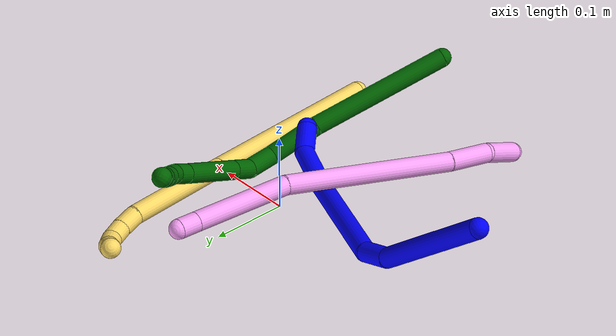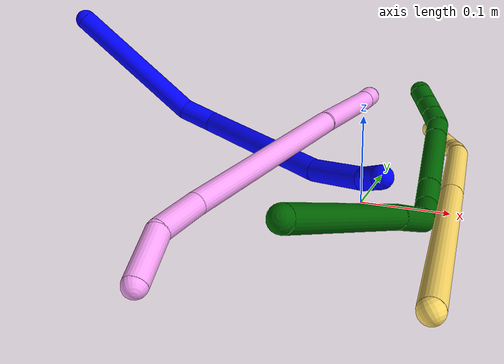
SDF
<sdf version="1.7">
 <world name="default">
  <model name="photoneo_s_sensor">
   <static>1</static>
   <pose>0 0 2 1.57079 1.57079 3.14159</pose>
   <link name="link">
    <inertial><mass>0.1</mass></inertial>
    <sensor name="sensor" type="depth">
     <update_rate>30</update_rate>
     <camera>
      <horizontal_fov>1.22</horizontal_fov>
      <image><width>1920</width><height>1200</height><format>B8G8R8</format></image>
      <clip><near>0.1</near><far>4</far></clip>
      <depth_camera><output>points</output></depth_camera>
     </camera>
     <plugin name="camera_plugin" filename="libgazebo_ros_depth_camera.so">
      <baseline>0.2</baseline>
      <alwaysOn>1</alwaysOn>
      <updateRate>0.0</updateRate>
      <cameraName>camera_ir</cameraName>
      <imageTopicName>/camera/color/image_raw</imageTopicName>
      <cameraInfoTopicName>/camera/color/camera_info</cameraInfoTopicName>
      <depthImageTopicName>/camera/depth/image_raw</depthImageTopicName>
      <depthImageCameraInfoTopicName>/camera/depth/camera_info</depthImageCameraInfoTopicName>
      <pointCloudTopicName>/camera/depth/points</pointCloudTopicName>
      <frameName>fr_optical</frameName>
      <pointCloudCutoff>0.1</pointCloudCutoff>
      <pointCloudCutoffMax>2.0</pointCloudCutoffMax>
      <distortionK1>0</distortionK1>
      <distortionK2>0</distortionK2>
      <distortionK3>0</distortionK3>
      <distortionT1>0</distortionT1>
      <distortionT2>0</distortionT2>
      <CxPrime>0</CxPrime>
      <Cx>0</Cx>
      <Cy>0</Cy>
      <focalLength>0</focalLength>
      <hackBaseline>0</hackBaseline>
     </plugin>
    </sensor>
   </link>
  </model>
  <model name="bin">
   <static>1</static>
   <link name="bottom">
    <collision name="collision-bottom">
     <pose>0 0 -0.01 0 -0 0</pose>
     <geometry><box><size>0.8 0.6 0.02</size></box></geometry>
     <surface>
      <friction><ode><mu>100</mu><mu2>100</mu2></ode></friction>
      <contact><collide_bitmask>65535</collide_bitmask></contact>
     </surface>
    </collision>
   </link>
   <link name="west_wall">
    <collision name="collision-west_wall">
     <pose>-0.41 0 0.1 0 -0 0</pose>
     <geometry><box><size>0.02 0.6 0.2</size></box></geometry>
     <surface>
      <friction><ode><mu>100</mu><mu2>100</mu2></ode></friction>
      <contact><collide_bitmask>65535</collide_bitmask></contact>
     </surface>
    </collision>
   </link>
   <link name="east_wall">
    <collision name="collision-east_wall">
     <pose>0.41 0 0.1 0 -0 0</pose>
     <geometry><box><size>0.02 0.6 0.2</size></box></geometry>
     <surface>
      <friction><ode><mu>100</mu><mu2>100</mu2></ode></friction>
      <contact><collide_bitmask>65535</collide_bitmask></contact>
     </surface>
    </collision>
   </link>
   <link name="south_wall">
    <collision name="collision-south_wall">
     <pose>0 -0.31 0.1 0 -0 0</pose>
     <geometry><box><size>0.8 0.02 0.2</size></box></geometry>
     <surface>
      <friction><ode><mu>100</mu><mu2>100</mu2></ode></friction>
      <contact><collide_bitmask>65535</collide_bitmask></contact>
     </surface>
    </collision>
   </link>
   <link name="north_wall">
    <collision name="collision-north_wall">
     <pose>0 0.31 0.1 0 -0 0</pose>
     <geometry><box><size>0.8 0.02 0.2</size></box></geometry>
     <surface>
      <friction><ode><mu>100</mu><mu2>100</mu2></ode></friction>
      <contact><collide_bitmask>65535</collide_bitmask></contact>
     </surface>
    </collision>
   </link>
  </model>
  <model name="1">
   <static>0</static>
   <link name="1">
    <collision name="collision-cylinder-e_1_1_4">
     <pose>0.048441 -0.048336 -0.053985 2.41134 0.58927 1.34198</pose>
     <geometry><cylinder><radius>0.0125</radius><length>0.174324</length></cylinder></geometry>
     <surface>
      <friction><ode><mu>1.16</mu><mu2>1.16</mu2><slip1>0</slip1><slip2>0</slip2></ode></friction>
      <contact><ode><kp>1e+06</kp><kd>1</kd><max_vel>0</max_vel><min_depth>0.001</min_depth></ode></contact>
     </surface>
    </collision>
    <visual name="visual-cylinder-e_1_1_4">
     <pose>0.048441 -0.048336 -0.053985 2.41134 0.58927 1.34198</pose>
     <geometry><cylinder><radius>0.0125</radius><length>0.174324</length></cylinder></geometry>
     <material><ambient>0 0 1 1</ambient></material>
    </visual>
    <collision name="collision-cylinder-e_2_4_5">
     <pose>0.102335 -0.106719 -0.125175 2.61306 0.267165 0.921881</pose>
     <geometry><cylinder><radius>0.0125</radius><length>0.041315</length></cylinder></geometry>
     <surface>
      <friction><ode><mu>1.16</mu><mu2>1.16</mu2><slip1>0</slip1><slip2>0</slip2></ode></friction>
      <contact><ode><kp>1e+06</kp><kd>1</kd><max_vel>0</max_vel><min_depth>0.001</min_depth></ode></contact>
     </surface>
    </collision>
    <visual name="visual-cylinder-e_2_4_5">
     <pose>0.102335 -0.106719 -0.125175 2.61306 0.267165 0.921881</pose>
     <geometry><cylinder><radius>0.0125</radius><length>0.041315</length></cylinder></geometry>
     <material><ambient>0 0 1 1</ambient></material>
    </visual>
    <collision name="collision-cylinder-e_3_5_6">
     <pose>0.122094 -0.12617 -0.229341 3.03388 0.162125 1.96986</pose>
     <geometry><cylinder><radius>0.0125</radius><length>0.177257</length></cylinder></geometry>
     <surface>
      <friction><ode><mu>1.16</mu><mu2>1.16</mu2><slip1>0</slip1><slip2>0</slip2></ode></friction>
      <contact><ode><kp>1e+06</kp><kd>1</kd><max_vel>0</max_vel><min_depth>0.001</min_depth></ode></contact>
     </surface>
    </collision>
    <visual name="visual-cylinder-e_3_5_6">
     <pose>0.122094 -0.12617 -0.229341 3.03388 0.162125 1.96986</pose>
     <geometry><cylinder><radius>0.0125</radius><length>0.177257</length></cylinder></geometry>
     <material><ambient>0 0 1 1</ambient></material>
    </visual>
    <collision name="collision-cylinder-e_4_6_7">
     <pose>0.134451 -0.138268 -0.35035 3.06263 -0.05701 -1.25044</pose>
     <geometry><cylinder><radius>0.0125</radius><length>0.068424</length></cylinder></geometry>
     <surface>
      <friction><ode><mu>1.16</mu><mu2>1.16</mu2><slip1>0</slip1><slip2>0</slip2></ode></friction>
      <contact><ode><kp>1e+06</kp><kd>1</kd><max_vel>0</max_vel><min_depth>0.001</min_depth></ode></contact>
     </surface>
    </collision>
    <visual name="visual-cylinder-e_4_6_7">
     <pose>0.134451 -0.138268 -0.35035 3.06263 -0.05701 -1.25044</pose>
     <geometry><cylinder><radius>0.0125</radius><length>0.068424</length></cylinder></geometry>
     <material><ambient>0 0 1 1</ambient></material>
    </visual>
    <collision name="collision-cylinder-e_5_7_2">
     <pose>0.128191 -0.1343 -0.402037 -2.78041 -0.224788 1.10738</pose>
     <geometry><cylinder><radius>0.0125</radius><length>0.03868</length></cylinder></geometry>
     <surface>
      <friction><ode><mu>1.16</mu><mu2>1.16</mu2><slip1>0</slip1><slip2>0</slip2></ode></friction>
      <contact><ode><kp>1e+06</kp><kd>1</kd><max_vel>0</max_vel><min_depth>0.001</min_depth></ode></contact>
     </surface>
    </collision>
    <visual name="visual-cylinder-e_5_7_2">
     <pose>0.128191 -0.1343 -0.402037 -2.78041 -0.224788 1.10738</pose>
     <geometry><cylinder><radius>0.0125</radius><length>0.03868</length></cylinder></geometry>
     <material><ambient>0 0 1 1</ambient></material>
    </visual>
    <collision name="collision-sphere-2">
     <pose>0.12388 -0.127637 -0.419674 0 -0 0</pose>
     <geometry><sphere><radius>0.0125</radius></sphere></geometry>
     <surface>
      <friction><ode><mu>1.16</mu><mu2>1.16</mu2><slip1>0</slip1><slip2>0</slip2></ode></friction>
      <contact><ode><kp>1e+06</kp><kd>1</kd><max_vel>0</max_vel><min_depth>0.001</min_depth></ode></contact>
     </surface>
    </collision>
    <visual name="visual-sphere-2">
     <pose>0.12388 -0.127637 -0.419674 0 -0 0</pose>
     <geometry><sphere><radius>0.0125</radius></sphere></geometry>
     <material><ambient>0 0 1 1</ambient></material>
    </visual>
    <collision name="collision-sphere-7">
     <pose>0.132502 -0.140962 -0.3844 0 -0 0</pose>
     <geometry><sphere><radius>0.0125</radius></sphere></geometry>
     <surface>
      <friction><ode><mu>1.16</mu><mu2>1.16</mu2><slip1>0</slip1><slip2>0</slip2></ode></friction>
      <contact><ode><kp>1e+06</kp><kd>1</kd><max_vel>0</max_vel><min_depth>0.001</min_depth></ode></contact>
     </surface>
    </collision>
    <visual name="visual-sphere-7">
     <pose>0.132502 -0.140962 -0.3844 0 -0 0</pose>
     <geometry><sphere><radius>0.0125</radius></sphere></geometry>
     <material><ambient>0 0 1 1</ambient></material>
    </visual>
    <collision name="collision-sphere-6">
     <pose>0.1364 -0.135573 -0.3163 0 -0 0</pose>
     <geometry><sphere><radius>0.0125</radius></sphere></geometry>
     <surface>
      <friction><ode><mu>1.16</mu><mu2>1.16</mu2><slip1>0</slip1><slip2>0</slip2></ode></friction>
      <contact><ode><kp>1e+06</kp><kd>1</kd><max_vel>0</max_vel><min_depth>0.001</min_depth></ode></contact>
     </surface>
    </collision>
    <visual name="visual-sphere-6">
     <pose>0.1364 -0.135573 -0.3163 0 -0 0</pose>
     <geometry><sphere><radius>0.0125</radius></sphere></geometry>
     <material><ambient>0 0 1 1</ambient></material>
    </visual>
    <collision name="collision-sphere-5">
     <pose>0.107788 -0.116767 -0.142381 0 -0 0</pose>
     <geometry><sphere><radius>0.0125</radius></sphere></geometry>
     <surface>
      <friction><ode><mu>1.16</mu><mu2>1.16</mu2><slip1>0</slip1><slip2>0</slip2></ode></friction>
      <contact><ode><kp>1e+06</kp><kd>1</kd><max_vel>0</max_vel><min_depth>0.001</min_depth></ode></contact>
     </surface>
    </collision>
    <visual name="visual-sphere-5">
     <pose>0.107788 -0.116767 -0.142381 0 -0 0</pose>
     <geometry><sphere><radius>0.0125</radius></sphere></geometry>
     <material><ambient>0 0 1 1</ambient></material>
    </visual>
    <collision name="collision-sphere-1">
     <geometry><sphere><radius>0.0125</radius></sphere></geometry>
     <surface>
      <friction><ode><mu>1.16</mu><mu2>1.16</mu2><slip1>0</slip1><slip2>0</slip2></ode></friction>
      <contact><ode><kp>1e+06</kp><kd>1</kd><max_vel>0</max_vel><min_depth>0.001</min_depth></ode></contact>
     </surface>
    </collision>
    <visual name="visual-sphere-1">
     <geometry><sphere><radius>0.0125</radius></sphere></geometry>
     <material><ambient>0 0 1 1</ambient></material>
    </visual>
    <collision name="collision-sphere-4">
     <pose>0.096881 -0.096672 -0.107969 0 -0 0</pose>
     <geometry><sphere><radius>0.0125</radius></sphere></geometry>
     <surface>
      <friction><ode><mu>1.16</mu><mu2>1.16</mu2><slip1>0</slip1><slip2>0</slip2></ode></friction>
      <contact><ode><kp>1e+06</kp><kd>1</kd><max_vel>0</max_vel><min_depth>0.001</min_depth></ode></contact>
     </surface>
    </collision>
    <visual name="visual-sphere-4">
     <pose>0.096881 -0.096672 -0.107969 0 -0 0</pose>
     <geometry><sphere><radius>0.0125</radius></sphere></geometry>
     <material><ambient>0 0 1 1</ambient></material>
    </visual>
    <inertial>
     <pose>0.096945 -0.099711 -0.189516 0 -0 0</pose>
     <mass>0.5</mass>
     <inertia>
      <ixx>0.000705</ixx>
      <ixy>0</ixy>
      <ixz>0</ixz>
      <iyy>0.001026</iyy>
      <iyz>0</iyz>
      <izz>-5.4e-05</izz>
     </inertia>
    </inertial>
   </link>
   <pose>-0.380921 0.040521 0.184033 1.84651 1.34092 -1.80694</pose>
  </model>
  <model name="4">
   <static>0</static>
   <link name="4">
    <collision name="collision-cylinder-e_1_1_4">
     <pose>0.005569 0.006419 0.028941 -0.218258 0.185705 -0.020405</pose>
     <geometry><cylinder><radius>0.0125</radius><length>0.060326</length></cylinder></geometry>
     <surface>
      <friction><ode><mu>1.16</mu><mu2>1.16</mu2><slip1>0</slip1><slip2>0</slip2></ode></friction>
      <contact><ode><kp>1e+06</kp><kd>1</kd><max_vel>0</max_vel><min_depth>0.001</min_depth></ode></contact>
     </surface>
    </collision>
    <visual name="visual-cylinder-e_1_1_4">
     <pose>0.005569 0.006419 0.028941 -0.218258 0.185705 -0.020405</pose>
     <geometry><cylinder><radius>0.0125</radius><length>0.060326</length></cylinder></geometry>
     <material><ambient>1 0.65098 0.996078 1</ambient></material>
    </visual>
    <collision name="collision-cylinder-e_2_4_5">
     <pose>0.010929 0.029174 0.081365 -0.607814 -0.007329 0.002299</pose>
     <geometry><cylinder><radius>0.0125</radius><length>0.057214</length></cylinder></geometry>
     <surface>
      <friction><ode><mu>1.16</mu><mu2>1.16</mu2><slip1>0</slip1><slip2>0</slip2></ode></friction>
      <contact><ode><kp>1e+06</kp><kd>1</kd><max_vel>0</max_vel><min_depth>0.001</min_depth></ode></contact>
     </surface>
    </collision>
    <visual name="visual-cylinder-e_2_4_5">
     <pose>0.010929 0.029174 0.081365 -0.607814 -0.007329 0.002299</pose>
     <geometry><cylinder><radius>0.0125</radius><length>0.057214</length></cylinder></geometry>
     <material><ambient>1 0.65098 0.996078 1</ambient></material>
    </visual>
    <collision name="collision-cylinder-e_3_5_6">
     <pose>0.017218 0.118513 0.192195 -0.696177 0.057023 -0.020696</pose>
     <geometry><cylinder><radius>0.0125</radius><length>0.228046</length></cylinder></geometry>
     <surface>
      <friction><ode><mu>1.16</mu><mu2>1.16</mu2><slip1>0</slip1><slip2>0</slip2></ode></friction>
      <contact><ode><kp>1e+06</kp><kd>1</kd><max_vel>0</max_vel><min_depth>0.001</min_depth></ode></contact>
     </surface>
    </collision>
    <visual name="visual-cylinder-e_3_5_6">
     <pose>0.017218 0.118513 0.192195 -0.696177 0.057023 -0.020696</pose>
     <geometry><cylinder><radius>0.0125</radius><length>0.228046</length></cylinder></geometry>
     <material><ambient>1 0.65098 0.996078 1</ambient></material>
    </visual>
    <collision name="collision-cylinder-e_4_6_7">
     <pose>0.014085 0.227735 0.33221 -0.602419 -0.149552 0.046538</pose>
     <geometry><cylinder><radius>0.0125</radius><length>0.12928</length></cylinder></geometry>
     <surface>
      <friction><ode><mu>1.16</mu><mu2>1.16</mu2><slip1>0</slip1><slip2>0</slip2></ode></friction>
      <contact><ode><kp>1e+06</kp><kd>1</kd><max_vel>0</max_vel><min_depth>0.001</min_depth></ode></contact>
     </surface>
    </collision>
    <visual name="visual-cylinder-e_4_6_7">
     <pose>0.014085 0.227735 0.33221 -0.602419 -0.149552 0.046538</pose>
     <geometry><cylinder><radius>0.0125</radius><length>0.12928</length></cylinder></geometry>
     <material><ambient>1 0.65098 0.996078 1</ambient></material>
    </visual>
    <collision name="collision-cylinder-e_5_7_2">
     <pose>0.002759 0.270447 0.395502 -0.548554 -0.135265 0.038113</pose>
     <geometry><cylinder><radius>0.0125</radius><length>0.025134</length></cylinder></geometry>
     <surface>
      <friction><ode><mu>1.16</mu><mu2>1.16</mu2><slip1>0</slip1><slip2>0</slip2></ode></friction>
      <contact><ode><kp>1e+06</kp><kd>1</kd><max_vel>0</max_vel><min_depth>0.001</min_depth></ode></contact>
     </surface>
    </collision>
    <visual name="visual-cylinder-e_5_7_2">
     <pose>0.002759 0.270447 0.395502 -0.548554 -0.135265 0.038113</pose>
     <geometry><cylinder><radius>0.0125</radius><length>0.025134</length></cylinder></geometry>
     <material><ambient>1 0.65098 0.996078 1</ambient></material>
    </visual>
    <collision name="collision-sphere-2">
     <pose>0.001065 0.27694 0.406127 0 -0 0</pose>
     <geometry><sphere><radius>0.0125</radius></sphere></geometry>
     <surface>
      <friction><ode><mu>1.16</mu><mu2>1.16</mu2><slip1>0</slip1><slip2>0</slip2></ode></friction>
      <contact><ode><kp>1e+06</kp><kd>1</kd><max_vel>0</max_vel><min_depth>0.001</min_depth></ode></contact>
     </surface>
    </collision>
    <visual name="visual-sphere-2">
     <pose>0.001065 0.27694 0.406127 0 -0 0</pose>
     <geometry><sphere><radius>0.0125</radius></sphere></geometry>
     <material><ambient>1 0.65098 0.996078 1</ambient></material>
    </visual>
    <collision name="collision-sphere-7">
     <pose>0.004454 0.263953 0.384877 0 -0 0</pose>
     <geometry><sphere><radius>0.0125</radius></sphere></geometry>
     <surface>
      <friction><ode><mu>1.16</mu><mu2>1.16</mu2><slip1>0</slip1><slip2>0</slip2></ode></friction>
      <contact><ode><kp>1e+06</kp><kd>1</kd><max_vel>0</max_vel><min_depth>0.001</min_depth></ode></contact>
     </surface>
    </collision>
    <visual name="visual-sphere-7">
     <pose>0.004454 0.263953 0.384877 0 -0 0</pose>
     <geometry><sphere><radius>0.0125</radius></sphere></geometry>
     <material><ambient>1 0.65098 0.996078 1</ambient></material>
    </visual>
    <collision name="collision-sphere-6">
     <pose>0.023716 0.191516 0.279543 0 -0 0</pose>
     <geometry><sphere><radius>0.0125</radius></sphere></geometry>
     <surface>
      <friction><ode><mu>1.16</mu><mu2>1.16</mu2><slip1>0</slip1><slip2>0</slip2></ode></friction>
      <contact><ode><kp>1e+06</kp><kd>1</kd><max_vel>0</max_vel><min_depth>0.001</min_depth></ode></contact>
     </surface>
    </collision>
    <visual name="visual-sphere-6">
     <pose>0.023716 0.191516 0.279543 0 -0 0</pose>
     <geometry><sphere><radius>0.0125</radius></sphere></geometry>
     <material><ambient>1 0.65098 0.996078 1</ambient></material>
    </visual>
    <collision name="collision-sphere-5">
     <pose>0.010719 0.04551 0.104848 0 -0 0</pose>
     <geometry><sphere><radius>0.0125</radius></sphere></geometry>
     <surface>
      <friction><ode><mu>1.16</mu><mu2>1.16</mu2><slip1>0</slip1><slip2>0</slip2></ode></friction>
      <contact><ode><kp>1e+06</kp><kd>1</kd><max_vel>0</max_vel><min_depth>0.001</min_depth></ode></contact>
     </surface>
    </collision>
    <visual name="visual-sphere-5">
     <pose>0.010719 0.04551 0.104848 0 -0 0</pose>
     <geometry><sphere><radius>0.0125</radius></sphere></geometry>
     <material><ambient>1 0.65098 0.996078 1</ambient></material>
    </visual>
    <collision name="collision-sphere-1">
     <geometry><sphere><radius>0.0125</radius></sphere></geometry>
     <surface>
      <friction><ode><mu>1.16</mu><mu2>1.16</mu2><slip1>0</slip1><slip2>0</slip2></ode></friction>
      <contact><ode><kp>1e+06</kp><kd>1</kd><max_vel>0</max_vel><min_depth>0.001</min_depth></ode></contact>
     </surface>
    </collision>
    <visual name="visual-sphere-1">
     <geometry><sphere><radius>0.0125</radius></sphere></geometry>
     <material><ambient>1 0.65098 0.996078 1</ambient></material>
    </visual>
    <collision name="collision-sphere-4">
     <pose>0.011139 0.012838 0.057882 0 -0 0</pose>
     <geometry><sphere><radius>0.0125</radius></sphere></geometry>
     <surface>
      <friction><ode><mu>1.16</mu><mu2>1.16</mu2><slip1>0</slip1><slip2>0</slip2></ode></friction>
      <contact><ode><kp>1e+06</kp><kd>1</kd><max_vel>0</max_vel><min_depth>0.001</min_depth></ode></contact>
     </surface>
    </collision>
    <visual name="visual-sphere-4">
     <pose>0.011139 0.012838 0.057882 0 -0 0</pose>
     <geometry><sphere><radius>0.0125</radius></sphere></geometry>
     <material><ambient>1 0.65098 0.996078 1</ambient></material>
    </visual>
    <inertial>
     <pose>0.013556 0.130644 0.206238 0 -0 0</pose>
     <mass>0.5</mass>
     <inertia>
      <ixx>0.001206</ixx>
      <ixy>0</ixy>
      <ixz>0</ixz>
      <iyy>0.000965</iyy>
      <iyz>0</iyz>
      <izz>-0.000759</izz>
     </inertia>
    </inertial>
   </link>
   <pose>-0.118704 -0.286961 0.012603 -0.65302 -1.13999 -0.4498</pose>
  </model>
  <model name="5">
   <static>0</static>
   <link name="5">
    <collision name="collision-cylinder-e_1_1_4">
     <pose>-0.008047 0.115718 -0.054569 -2.01144 -0.062818 0.099027</pose>
     <geometry><cylinder><radius>0.0125</radius><length>0.256384</length></cylinder></geometry>
     <surface>
      <friction><ode><mu>1.16</mu><mu2>1.16</mu2><slip1>0</slip1><slip2>0</slip2></ode></friction>
      <contact><ode><kp>1e+06</kp><kd>1</kd><max_vel>0</max_vel><min_depth>0.001</min_depth></ode></contact>
     </surface>
    </collision>
    <visual name="visual-cylinder-e_1_1_4">
     <pose>-0.008047 0.115718 -0.054569 -2.01144 -0.062818 0.099027</pose>
     <geometry><cylinder><radius>0.0125</radius><length>0.256384</length></cylinder></geometry>
     <material><ambient>1 0.858824 0.4 1</ambient></material>
    </visual>
    <collision name="collision-cylinder-e_2_4_5">
     <pose>-0.020072 0.298281 -0.140873 -2.01404 -0.053698 0.084904</pose>
     <geometry><cylinder><radius>0.0125</radius><length>0.148205</length></cylinder></geometry>
     <surface>
      <friction><ode><mu>1.16</mu><mu2>1.16</mu2><slip1>0</slip1><slip2>0</slip2></ode></friction>
      <contact><ode><kp>1e+06</kp><kd>1</kd><max_vel>0</max_vel><min_depth>0.001</min_depth></ode></contact>
     </surface>
    </collision>
    <visual name="visual-cylinder-e_2_4_5">
     <pose>-0.020072 0.298281 -0.140873 -2.01404 -0.053698 0.084904</pose>
     <geometry><cylinder><radius>0.0125</radius><length>0.148205</length></cylinder></geometry>
     <material><ambient>1 0.858824 0.4 1</ambient></material>
    </visual>
    <collision name="collision-cylinder-e_3_5_6">
     <pose>-0.022135 0.377517 -0.177718 -1.96195 0.141898 -0.211576</pose>
     <geometry><cylinder><radius>0.0125</radius><length>0.027079</length></cylinder></geometry>
     <surface>
      <friction><ode><mu>1.16</mu><mu2>1.16</mu2><slip1>0</slip1><slip2>0</slip2></ode></friction>
      <contact><ode><kp>1e+06</kp><kd>1</kd><max_vel>0</max_vel><min_depth>0.001</min_depth></ode></contact>
     </surface>
    </collision>
    <visual name="visual-cylinder-e_3_5_6">
     <pose>-0.022135 0.377517 -0.177718 -1.96195 0.141898 -0.211576</pose>
     <geometry><cylinder><radius>0.0125</radius><length>0.027079</length></cylinder></geometry>
     <material><ambient>1 0.858824 0.4 1</ambient></material>
    </visual>
    <collision name="collision-cylinder-e_4_6_7">
     <pose>-0.017659 0.399258 -0.187482 -2.03265 0.240441 -0.385305</pose>
     <geometry><cylinder><radius>0.0125</radius><length>0.021508</length></cylinder></geometry>
     <surface>
      <friction><ode><mu>1.16</mu><mu2>1.16</mu2><slip1>0</slip1><slip2>0</slip2></ode></friction>
      <contact><ode><kp>1e+06</kp><kd>1</kd><max_vel>0</max_vel><min_depth>0.001</min_depth></ode></contact>
     </surface>
    </collision>
    <visual name="visual-cylinder-e_4_6_7">
     <pose>-0.017659 0.399258 -0.187482 -2.03265 0.240441 -0.385305</pose>
     <geometry><cylinder><radius>0.0125</radius><length>0.021508</length></cylinder></geometry>
     <material><ambient>1 0.858824 0.4 1</ambient></material>
    </visual>
    <collision name="collision-cylinder-e_5_7_8">
     <pose>-0.011861 0.414171 -0.200111 -2.5325 0.321361 -0.952153</pose>
     <geometry><cylinder><radius>0.0125</radius><length>0.020497</length></cylinder></geometry>
     <surface>
      <friction><ode><mu>1.16</mu><mu2>1.16</mu2><slip1>0</slip1><slip2>0</slip2></ode></friction>
      <contact><ode><kp>1e+06</kp><kd>1</kd><max_vel>0</max_vel><min_depth>0.001</min_depth></ode></contact>
     </surface>
    </collision>
    <visual name="visual-cylinder-e_5_7_8">
     <pose>-0.011861 0.414171 -0.200111 -2.5325 0.321361 -0.952153</pose>
     <geometry><cylinder><radius>0.0125</radius><length>0.020497</length></cylinder></geometry>
     <material><ambient>1 0.858824 0.4 1</ambient></material>
    </visual>
    <collision name="collision-cylinder-e_6_8_2">
     <pose>-0.005164 0.421735 -0.220629 -2.98344 0.266007 -2.07216</pose>
     <geometry><cylinder><radius>0.0125</radius><length>0.026328</length></cylinder></geometry>
     <surface>
      <friction><ode><mu>1.16</mu><mu2>1.16</mu2><slip1>0</slip1><slip2>0</slip2></ode></friction>
      <contact><ode><kp>1e+06</kp><kd>1</kd><max_vel>0</max_vel><min_depth>0.001</min_depth></ode></contact>
     </surface>
    </collision>
    <visual name="visual-cylinder-e_6_8_2">
     <pose>-0.005164 0.421735 -0.220629 -2.98344 0.266007 -2.07216</pose>
     <geometry><cylinder><radius>0.0125</radius><length>0.026328</length></cylinder></geometry>
     <material><ambient>1 0.858824 0.4 1</ambient></material>
    </visual>
    <collision name="collision-sphere-2">
     <pose>-0.001703 0.423735 -0.233171 0 -0 0</pose>
     <geometry><sphere><radius>0.0125</radius></sphere></geometry>
     <surface>
      <friction><ode><mu>1.16</mu><mu2>1.16</mu2><slip1>0</slip1><slip2>0</slip2></ode></friction>
      <contact><ode><kp>1e+06</kp><kd>1</kd><max_vel>0</max_vel><min_depth>0.001</min_depth></ode></contact>
     </surface>
    </collision>
    <visual name="visual-sphere-2">
     <pose>-0.001703 0.423735 -0.233171 0 -0 0</pose>
     <geometry><sphere><radius>0.0125</radius></sphere></geometry>
     <material><ambient>1 0.858824 0.4 1</ambient></material>
    </visual>
    <collision name="collision-sphere-4">
     <pose>-0.016095 0.231436 -0.109138 0 -0 0</pose>
     <geometry><sphere><radius>0.0125</radius></sphere></geometry>
     <surface>
      <friction><ode><mu>1.16</mu><mu2>1.16</mu2><slip1>0</slip1><slip2>0</slip2></ode></friction>
      <contact><ode><kp>1e+06</kp><kd>1</kd><max_vel>0</max_vel><min_depth>0.001</min_depth></ode></contact>
     </surface>
    </collision>
    <visual name="visual-sphere-4">
     <pose>-0.016095 0.231436 -0.109138 0 -0 0</pose>
     <geometry><sphere><radius>0.0125</radius></sphere></geometry>
     <material><ambient>1 0.858824 0.4 1</ambient></material>
    </visual>
    <collision name="collision-sphere-1">
     <geometry><sphere><radius>0.0125</radius></sphere></geometry>
     <surface>
      <friction><ode><mu>1.16</mu><mu2>1.16</mu2><slip1>0</slip1><slip2>0</slip2></ode></friction>
      <contact><ode><kp>1e+06</kp><kd>1</kd><max_vel>0</max_vel><min_depth>0.001</min_depth></ode></contact>
     </surface>
    </collision>
    <visual name="visual-sphere-1">
     <geometry><sphere><radius>0.0125</radius></sphere></geometry>
     <material><ambient>1 0.858824 0.4 1</ambient></material>
    </visual>
    <collision name="collision-sphere-8">
     <pose>-0.008624 0.419734 -0.208086 0 -0 0</pose>
     <geometry><sphere><radius>0.0125</radius></sphere></geometry>
     <surface>
      <friction><ode><mu>1.16</mu><mu2>1.16</mu2><slip1>0</slip1><slip2>0</slip2></ode></friction>
      <contact><ode><kp>1e+06</kp><kd>1</kd><max_vel>0</max_vel><min_depth>0.001</min_depth></ode></contact>
     </surface>
    </collision>
    <visual name="visual-sphere-8">
     <pose>-0.008624 0.419734 -0.208086 0 -0 0</pose>
     <geometry><sphere><radius>0.0125</radius></sphere></geometry>
     <material><ambient>1 0.858824 0.4 1</ambient></material>
    </visual>
    <collision name="collision-sphere-5">
     <pose>-0.024049 0.365125 -0.172607 0 -0 0</pose>
     <geometry><sphere><radius>0.0125</radius></sphere></geometry>
     <surface>
      <friction><ode><mu>1.16</mu><mu2>1.16</mu2><slip1>0</slip1><slip2>0</slip2></ode></friction>
      <contact><ode><kp>1e+06</kp><kd>1</kd><max_vel>0</max_vel><min_depth>0.001</min_depth></ode></contact>
     </surface>
    </collision>
    <visual name="visual-sphere-5">
     <pose>-0.024049 0.365125 -0.172607 0 -0 0</pose>
     <geometry><sphere><radius>0.0125</radius></sphere></geometry>
     <material><ambient>1 0.858824 0.4 1</ambient></material>
    </visual>
    <collision name="collision-sphere-6">
     <pose>-0.02022 0.389908 -0.182828 0 -0 0</pose>
     <geometry><sphere><radius>0.0125</radius></sphere></geometry>
     <surface>
      <friction><ode><mu>1.16</mu><mu2>1.16</mu2><slip1>0</slip1><slip2>0</slip2></ode></friction>
      <contact><ode><kp>1e+06</kp><kd>1</kd><max_vel>0</max_vel><min_depth>0.001</min_depth></ode></contact>
     </surface>
    </collision>
    <visual name="visual-sphere-6">
     <pose>-0.02022 0.389908 -0.182828 0 -0 0</pose>
     <geometry><sphere><radius>0.0125</radius></sphere></geometry>
     <material><ambient>1 0.858824 0.4 1</ambient></material>
    </visual>
    <collision name="collision-sphere-7">
     <pose>-0.015098 0.408608 -0.192136 0 -0 0</pose>
     <geometry><sphere><radius>0.0125</radius></sphere></geometry>
     <surface>
      <friction><ode><mu>1.16</mu><mu2>1.16</mu2><slip1>0</slip1><slip2>0</slip2></ode></friction>
      <contact><ode><kp>1e+06</kp><kd>1</kd><max_vel>0</max_vel><min_depth>0.001</min_depth></ode></contact>
     </surface>
    </collision>
    <visual name="visual-sphere-7">
     <pose>-0.015098 0.408608 -0.192136 0 -0 0</pose>
     <geometry><sphere><radius>0.0125</radius></sphere></geometry>
     <material><ambient>1 0.858824 0.4 1</ambient></material>
    </visual>
    <inertial>
     <pose>-0.012793 0.224555 -0.107248 0 -0 0</pose>
     <mass>0.5</mass>
     <inertia>
      <ixx>0.001843</ixx>
      <ixy>0</ixy>
      <ixz>0</ixz>
      <iyy>-0.000519</iyy>
      <iyz>0</iyz>
      <izz>-0.001448</izz>
     </inertia>
    </inertial>
   </link>
   <pose>0.120012 -0.239963 0.012281 -2.67697 0.627054 -2.98954</pose>
  </model>
  <model name="6">
   <static>0</static>
   <link name="6">
    <collision name="collision-cylinder-e_1_1_4">
     <pose>0.041866 0.035439 -0.075667 -2.70358 0.4645 -1.63152</pose>
     <geometry><cylinder><radius>0.0125</radius><length>0.186913</length></cylinder></geometry>
     <surface>
      <friction><ode><mu>1.16</mu><mu2>1.16</mu2><slip1>0</slip1><slip2>0</slip2></ode></friction>
      <contact><ode><kp>1e+06</kp><kd>1</kd><max_vel>0</max_vel><min_depth>0.001</min_depth></ode></contact>
     </surface>
    </collision>
    <visual name="visual-cylinder-e_1_1_4">
     <pose>0.041866 0.035439 -0.075667 -2.70358 0.4645 -1.63152</pose>
     <geometry><cylinder><radius>0.0125</radius><length>0.186913</length></cylinder></geometry>
     <material><ambient>0 0.392157 0.003922 1</ambient></material>
    </visual>
    <collision name="collision-cylinder-e_2_4_5">
     <pose>0.098006 0.081808 -0.18071 -2.78535 0.427305 -1.75633</pose>
     <geometry><cylinder><radius>0.0125</radius><length>0.068882</length></cylinder></geometry>
     <surface>
      <friction><ode><mu>1.16</mu><mu2>1.16</mu2><slip1>0</slip1><slip2>0</slip2></ode></friction>
      <contact><ode><kp>1e+06</kp><kd>1</kd><max_vel>0</max_vel><min_depth>0.001</min_depth></ode></contact>
     </surface>
    </collision>
    <visual name="visual-cylinder-e_2_4_5">
     <pose>0.098006 0.081808 -0.18071 -2.78535 0.427305 -1.75633</pose>
     <geometry><cylinder><radius>0.0125</radius><length>0.068882</length></cylinder></geometry>
     <material><ambient>0 0.392157 0.003922 1</ambient></material>
    </visual>
    <collision name="collision-cylinder-e_3_5_6">
     <pose>0.112317 0.104453 -0.226555 -2.52336 0.001906 -0.005969</pose>
     <geometry><cylinder><radius>0.0125</radius><length>0.040419</length></cylinder></geometry>
     <surface>
      <friction><ode><mu>1.16</mu><mu2>1.16</mu2><slip1>0</slip1><slip2>0</slip2></ode></friction>
      <contact><ode><kp>1e+06</kp><kd>1</kd><max_vel>0</max_vel><min_depth>0.001</min_depth></ode></contact>
     </surface>
    </collision>
    <visual name="visual-cylinder-e_3_5_6">
     <pose>0.112317 0.104453 -0.226555 -2.52336 0.001906 -0.005969</pose>
     <geometry><cylinder><radius>0.0125</radius><length>0.040419</length></cylinder></geometry>
     <material><ambient>0 0.392157 0.003922 1</ambient></material>
    </visual>
    <collision name="collision-cylinder-e_4_6_7">
     <pose>0.110498 0.129681 -0.251527 -2.1324 -0.115807 0.209156</pose>
     <geometry><cylinder><radius>0.0125</radius><length>0.03215</length></cylinder></geometry>
     <surface>
      <friction><ode><mu>1.16</mu><mu2>1.16</mu2><slip1>0</slip1><slip2>0</slip2></ode></friction>
      <contact><ode><kp>1e+06</kp><kd>1</kd><max_vel>0</max_vel><min_depth>0.001</min_depth></ode></contact>
     </surface>
    </collision>
    <visual name="visual-cylinder-e_4_6_7">
     <pose>0.110498 0.129681 -0.251527 -2.1324 -0.115807 0.209156</pose>
     <geometry><cylinder><radius>0.0125</radius><length>0.03215</length></cylinder></geometry>
     <material><ambient>0 0.392157 0.003922 1</ambient></material>
    </visual>
    <collision name="collision-cylinder-e_5_7_8">
     <pose>0.103462 0.180222 -0.283301 -2.13192 -0.117878 0.212756</pose>
     <geometry><cylinder><radius>0.0125</radius><length>0.088075</length></cylinder></geometry>
     <surface>
      <friction><ode><mu>1.16</mu><mu2>1.16</mu2><slip1>0</slip1><slip2>0</slip2></ode></friction>
      <contact><ode><kp>1e+06</kp><kd>1</kd><max_vel>0</max_vel><min_depth>0.001</min_depth></ode></contact>
     </surface>
    </collision>
    <visual name="visual-cylinder-e_5_7_8">
     <pose>0.103462 0.180222 -0.283301 -2.13192 -0.117878 0.212756</pose>
     <geometry><cylinder><radius>0.0125</radius><length>0.088075</length></cylinder></geometry>
     <material><ambient>0 0.392157 0.003922 1</ambient></material>
    </visual>
    <collision name="collision-cylinder-e_6_8_9">
     <pose>0.09692 0.226757 -0.312119 -2.0988 -0.123111 0.213776</pose>
     <geometry><cylinder><radius>0.0125</radius><length>0.022186</length></cylinder></geometry>
     <surface>
      <friction><ode><mu>1.16</mu><mu2>1.16</mu2><slip1>0</slip1><slip2>0</slip2></ode></friction>
      <contact><ode><kp>1e+06</kp><kd>1</kd><max_vel>0</max_vel><min_depth>0.001</min_depth></ode></contact>
     </surface>
    </collision>
    <visual name="visual-cylinder-e_6_8_9">
     <pose>0.09692 0.226757 -0.312119 -2.0988 -0.123111 0.213776</pose>
     <geometry><cylinder><radius>0.0125</radius><length>0.022186</length></cylinder></geometry>
     <material><ambient>0 0.392157 0.003922 1</ambient></material>
    </visual>
    <collision name="collision-cylinder-e_7_9_10">
     <pose>0.090376 0.243815 -0.323053 -2.19067 -0.509575 0.936662</pose>
     <geometry><cylinder><radius>0.0125</radius><length>0.021245</length></cylinder></geometry>
     <surface>
      <friction><ode><mu>1.16</mu><mu2>1.16</mu2><slip1>0</slip1><slip2>0</slip2></ode></friction>
      <contact><ode><kp>1e+06</kp><kd>1</kd><max_vel>0</max_vel><min_depth>0.001</min_depth></ode></contact>
     </surface>
    </collision>
    <visual name="visual-cylinder-e_7_9_10">
     <pose>0.090376 0.243815 -0.323053 -2.19067 -0.509575 0.936662</pose>
     <geometry><cylinder><radius>0.0125</radius><length>0.021245</length></cylinder></geometry>
     <material><ambient>0 0.392157 0.003922 1</ambient></material>
    </visual>
    <collision name="collision-cylinder-e_8_10_11">
     <pose>0.079566 0.258467 -0.332708 -2.11179 -0.596589 0.995546</pose>
     <geometry><cylinder><radius>0.0125</radius><length>0.020037</length></cylinder></geometry>
     <surface>
      <friction><ode><mu>1.16</mu><mu2>1.16</mu2><slip1>0</slip1><slip2>0</slip2></ode></friction>
      <contact><ode><kp>1e+06</kp><kd>1</kd><max_vel>0</max_vel><min_depth>0.001</min_depth></ode></contact>
     </surface>
    </collision>
    <visual name="visual-cylinder-e_8_10_11">
     <pose>0.079566 0.258467 -0.332708 -2.11179 -0.596589 0.995546</pose>
     <geometry><cylinder><radius>0.0125</radius><length>0.020037</length></cylinder></geometry>
     <material><ambient>0 0.392157 0.003922 1</ambient></material>
    </visual>
    <collision name="collision-cylinder-e_9_11_2">
     <pose>0.067712 0.272699 -0.340349 -2.01275 -0.668296 1.00313</pose>
     <geometry><cylinder><radius>0.0125</radius><length>0.020093</length></cylinder></geometry>
     <surface>
      <friction><ode><mu>1.16</mu><mu2>1.16</mu2><slip1>0</slip1><slip2>0</slip2></ode></friction>
      <contact><ode><kp>1e+06</kp><kd>1</kd><max_vel>0</max_vel><min_depth>0.001</min_depth></ode></contact>
     </surface>
    </collision>
    <visual name="visual-cylinder-e_9_11_2">
     <pose>0.067712 0.272699 -0.340349 -2.01275 -0.668296 1.00313</pose>
     <geometry><cylinder><radius>0.0125</radius><length>0.020093</length></cylinder></geometry>
     <material><ambient>0 0.392157 0.003922 1</ambient></material>
    </visual>
    <collision name="collision-sphere-2">
     <pose>0.061487 0.279827 -0.343721 0 -0 0</pose>
     <geometry><sphere><radius>0.0125</radius></sphere></geometry>
     <surface>
      <friction><ode><mu>1.16</mu><mu2>1.16</mu2><slip1>0</slip1><slip2>0</slip2></ode></friction>
      <contact><ode><kp>1e+06</kp><kd>1</kd><max_vel>0</max_vel><min_depth>0.001</min_depth></ode></contact>
     </surface>
    </collision>
    <visual name="visual-sphere-2">
     <pose>0.061487 0.279827 -0.343721 0 -0 0</pose>
     <geometry><sphere><radius>0.0125</radius></sphere></geometry>
     <material><ambient>0 0.392157 0.003922 1</ambient></material>
    </visual>
    <collision name="collision-sphere-11">
     <pose>0.073937 0.265571 -0.336976 0 -0 0</pose>
     <geometry><sphere><radius>0.0125</radius></sphere></geometry>
     <surface>
      <friction><ode><mu>1.16</mu><mu2>1.16</mu2><slip1>0</slip1><slip2>0</slip2></ode></friction>
      <contact><ode><kp>1e+06</kp><kd>1</kd><max_vel>0</max_vel><min_depth>0.001</min_depth></ode></contact>
     </surface>
    </collision>
    <visual name="visual-sphere-11">
     <pose>0.073937 0.265571 -0.336976 0 -0 0</pose>
     <geometry><sphere><radius>0.0125</radius></sphere></geometry>
     <material><ambient>0 0.392157 0.003922 1</ambient></material>
    </visual>
    <collision name="collision-sphere-10">
     <pose>0.085195 0.251363 -0.32844 0 -0 0</pose>
     <geometry><sphere><radius>0.0125</radius></sphere></geometry>
     <surface>
      <friction><ode><mu>1.16</mu><mu2>1.16</mu2><slip1>0</slip1><slip2>0</slip2></ode></friction>
      <contact><ode><kp>1e+06</kp><kd>1</kd><max_vel>0</max_vel><min_depth>0.001</min_depth></ode></contact>
     </surface>
    </collision>
    <visual name="visual-sphere-10">
     <pose>0.085195 0.251363 -0.32844 0 -0 0</pose>
     <geometry><sphere><radius>0.0125</radius></sphere></geometry>
     <material><ambient>0 0.392157 0.003922 1</ambient></material>
    </visual>
    <collision name="collision-sphere-9">
     <pose>0.095558 0.236267 -0.317666 0 -0 0</pose>
     <geometry><sphere><radius>0.0125</radius></sphere></geometry>
     <surface>
      <friction><ode><mu>1.16</mu><mu2>1.16</mu2><slip1>0</slip1><slip2>0</slip2></ode></friction>
      <contact><ode><kp>1e+06</kp><kd>1</kd><max_vel>0</max_vel><min_depth>0.001</min_depth></ode></contact>
     </surface>
    </collision>
    <visual name="visual-sphere-9">
     <pose>0.095558 0.236267 -0.317666 0 -0 0</pose>
     <geometry><sphere><radius>0.0125</radius></sphere></geometry>
     <material><ambient>0 0.392157 0.003922 1</ambient></material>
    </visual>
    <collision name="collision-sphere-4">
     <pose>0.083733 0.070877 -0.151334 0 -0 0</pose>
     <geometry><sphere><radius>0.0125</radius></sphere></geometry>
     <surface>
      <friction><ode><mu>1.16</mu><mu2>1.16</mu2><slip1>0</slip1><slip2>0</slip2></ode></friction>
      <contact><ode><kp>1e+06</kp><kd>1</kd><max_vel>0</max_vel><min_depth>0.001</min_depth></ode></contact>
     </surface>
    </collision>
    <visual name="visual-sphere-4">
     <pose>0.083733 0.070877 -0.151334 0 -0 0</pose>
     <geometry><sphere><radius>0.0125</radius></sphere></geometry>
     <material><ambient>0 0.392157 0.003922 1</ambient></material>
    </visual>
    <collision name="collision-sphere-1">
     <geometry><sphere><radius>0.0125</radius></sphere></geometry>
     <surface>
      <friction><ode><mu>1.16</mu><mu2>1.16</mu2><slip1>0</slip1><slip2>0</slip2></ode></friction>
      <contact><ode><kp>1e+06</kp><kd>1</kd><max_vel>0</max_vel><min_depth>0.001</min_depth></ode></contact>
     </surface>
    </collision>
    <visual name="visual-sphere-1">
     <geometry><sphere><radius>0.0125</radius></sphere></geometry>
     <material><ambient>0 0.392157 0.003922 1</ambient></material>
    </visual>
    <collision name="collision-sphere-8">
     <pose>0.098283 0.217248 -0.306573 0 -0 0</pose>
     <geometry><sphere><radius>0.0125</radius></sphere></geometry>
     <surface>
      <friction><ode><mu>1.16</mu><mu2>1.16</mu2><slip1>0</slip1><slip2>0</slip2></ode></friction>
      <contact><ode><kp>1e+06</kp><kd>1</kd><max_vel>0</max_vel><min_depth>0.001</min_depth></ode></contact>
     </surface>
    </collision>
    <visual name="visual-sphere-8">
     <pose>0.098283 0.217248 -0.306573 0 -0 0</pose>
     <geometry><sphere><radius>0.0125</radius></sphere></geometry>
     <material><ambient>0 0.392157 0.003922 1</ambient></material>
    </visual>
    <collision name="collision-sphere-5">
     <pose>0.112279 0.09274 -0.210086 0 -0 0</pose>
     <geometry><sphere><radius>0.0125</radius></sphere></geometry>
     <surface>
      <friction><ode><mu>1.16</mu><mu2>1.16</mu2><slip1>0</slip1><slip2>0</slip2></ode></friction>
      <contact><ode><kp>1e+06</kp><kd>1</kd><max_vel>0</max_vel><min_depth>0.001</min_depth></ode></contact>
     </surface>
    </collision>
    <visual name="visual-sphere-5">
     <pose>0.112279 0.09274 -0.210086 0 -0 0</pose>
     <geometry><sphere><radius>0.0125</radius></sphere></geometry>
     <material><ambient>0 0.392157 0.003922 1</ambient></material>
    </visual>
    <collision name="collision-sphere-6">
     <pose>0.112356 0.116166 -0.243023 0 -0 0</pose>
     <geometry><sphere><radius>0.0125</radius></sphere></geometry>
     <surface>
      <friction><ode><mu>1.16</mu><mu2>1.16</mu2><slip1>0</slip1><slip2>0</slip2></ode></friction>
      <contact><ode><kp>1e+06</kp><kd>1</kd><max_vel>0</max_vel><min_depth>0.001</min_depth></ode></contact>
     </surface>
    </collision>
    <visual name="visual-sphere-6">
     <pose>0.112356 0.116166 -0.243023 0 -0 0</pose>
     <geometry><sphere><radius>0.0125</radius></sphere></geometry>
     <material><ambient>0 0.392157 0.003922 1</ambient></material>
    </visual>
    <collision name="collision-sphere-7">
     <pose>0.108641 0.143196 -0.26003 0 -0 0</pose>
     <geometry><sphere><radius>0.0125</radius></sphere></geometry>
     <surface>
      <friction><ode><mu>1.16</mu><mu2>1.16</mu2><slip1>0</slip1><slip2>0</slip2></ode></friction>
      <contact><ode><kp>1e+06</kp><kd>1</kd><max_vel>0</max_vel><min_depth>0.001</min_depth></ode></contact>
     </surface>
    </collision>
    <visual name="visual-sphere-7">
     <pose>0.108641 0.143196 -0.26003 0 -0 0</pose>
     <geometry><sphere><radius>0.0125</radius></sphere></geometry>
     <material><ambient>0 0.392157 0.003922 1</ambient></material>
    </visual>
    <inertial>
     <pose>0.077612 0.114784 -0.192159 0 -0 0</pose>
     <mass>0.5</mass>
     <inertia>
      <ixx>-0.000459</ixx>
      <ixy>0</ixy>
      <ixz>0</ixz>
      <iyy>-0.000374</iyy>
      <iyz>0</iyz>
      <izz>-0.000558</izz>
     </inertia>
    </inertial>
   </link>
   <pose>0.013176 -0.288359 0.0922 0.94824 0.32465 0.106674</pose>
  </model>
 </world>
</sdf>
